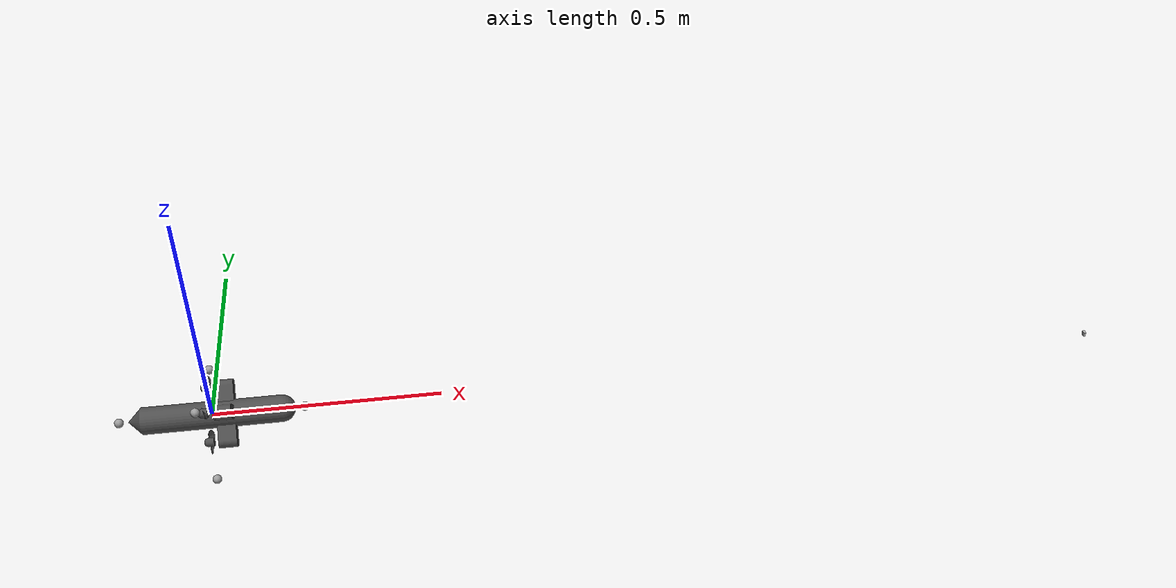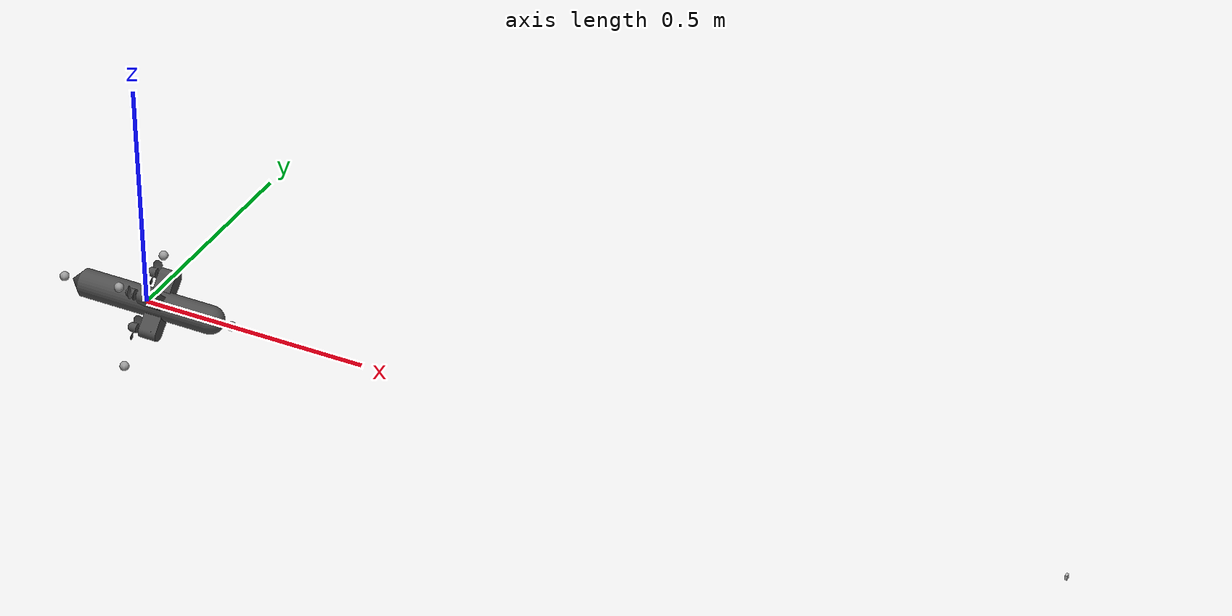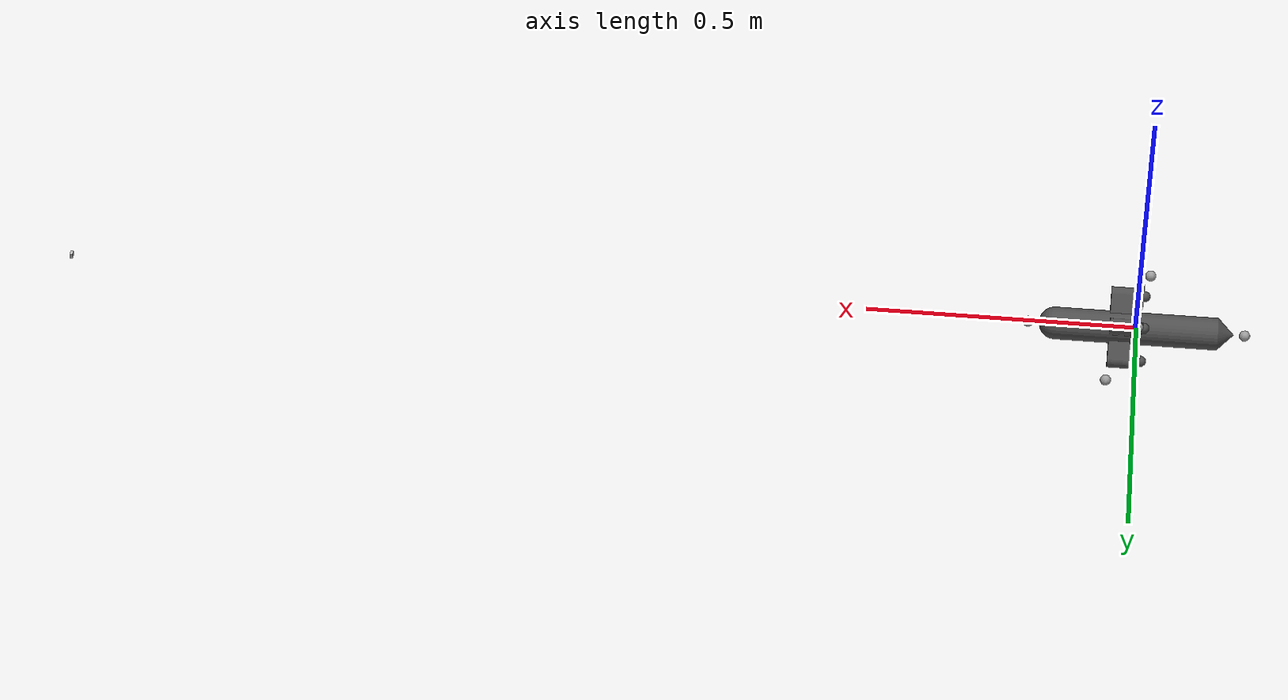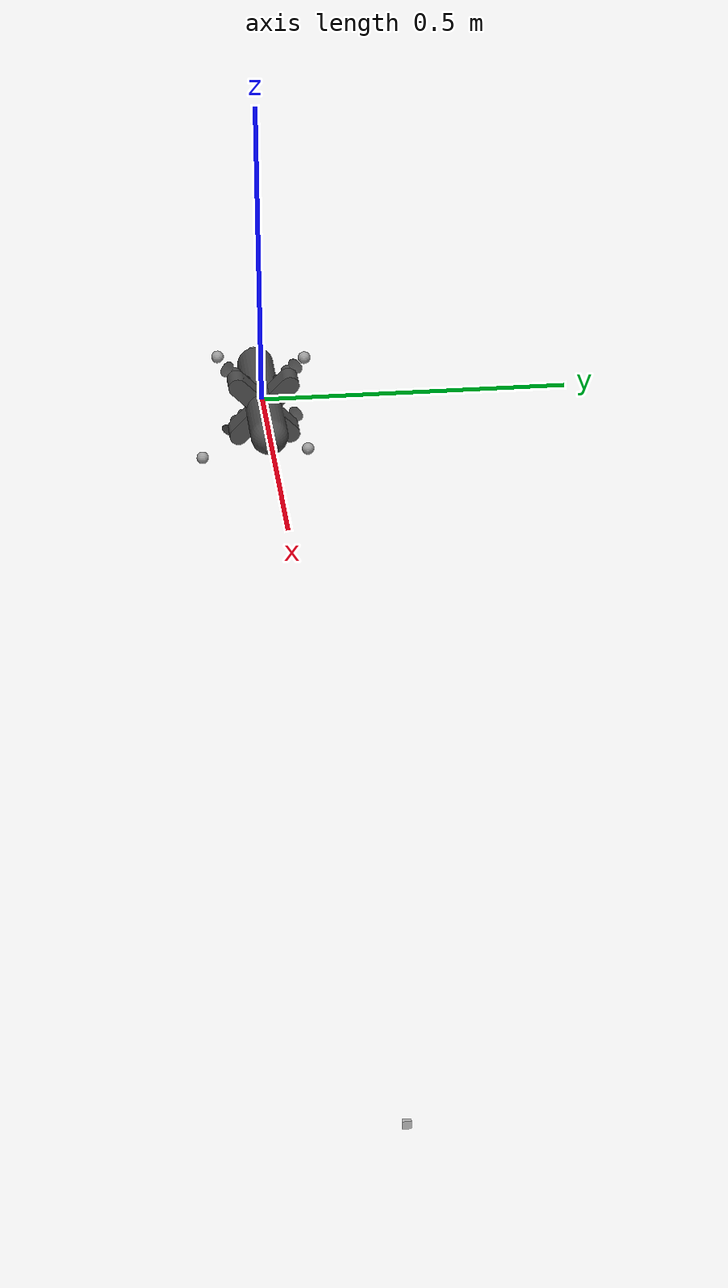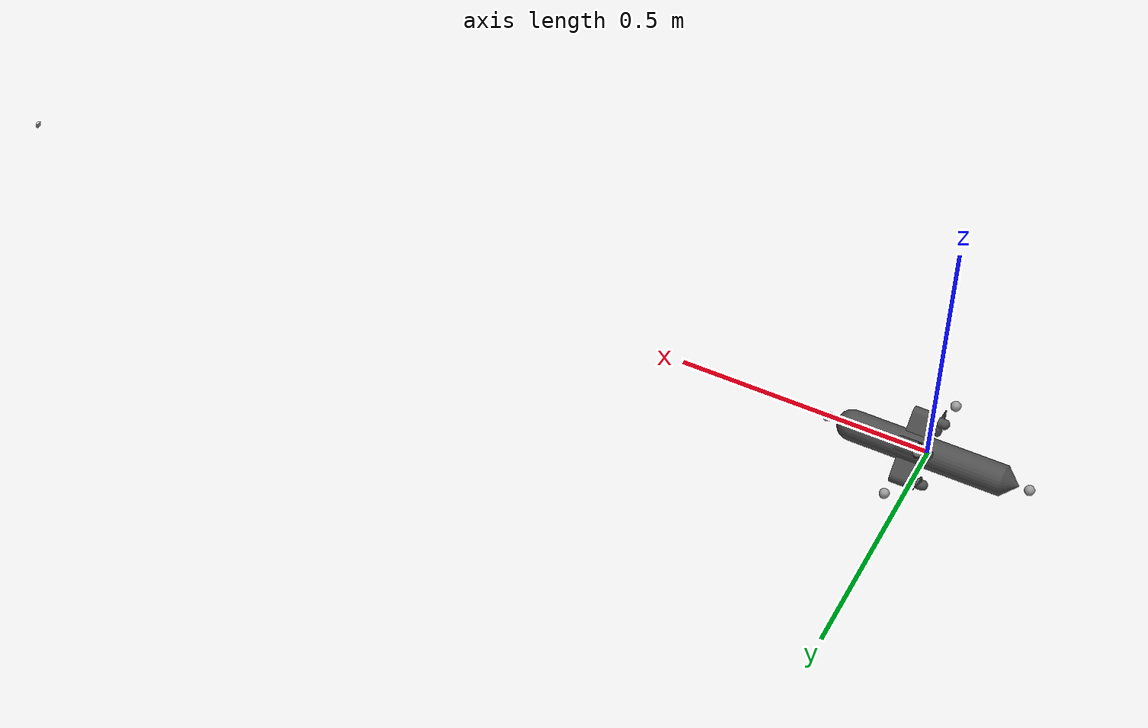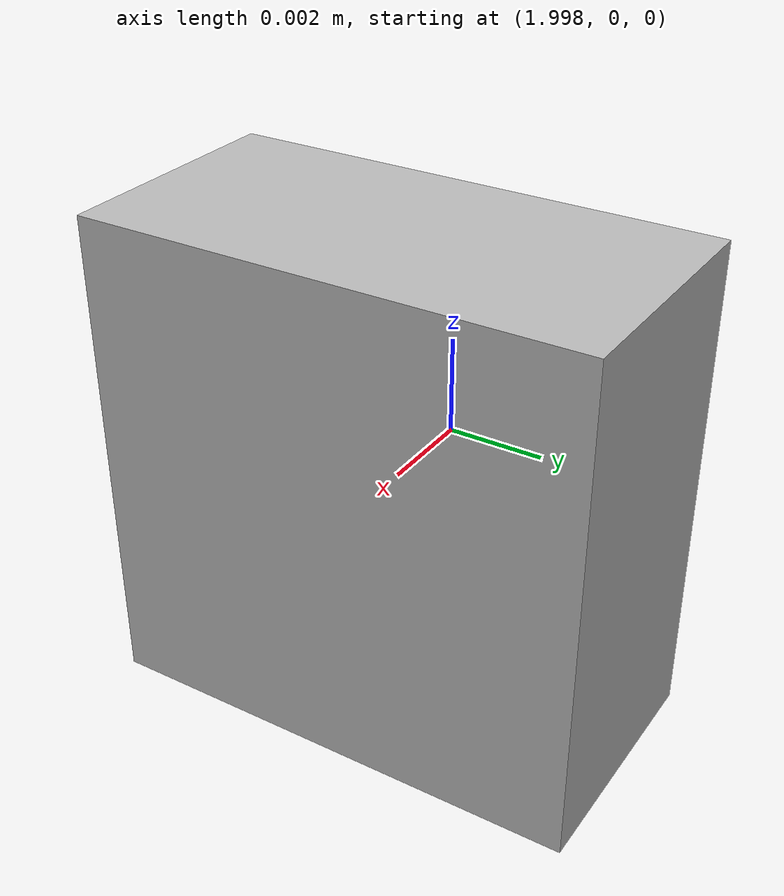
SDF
<?xml version="1.0" ?>
<sdf version="1.5">
  <world name="default">
    <!-- A global light source -->

    <include>
      <uri>model://collision_tank</uri>
    </include>

    <include>
      <uri>model://hippocampus</uri>
      <pose>0 0 0 0 0 0</pose>
    </include>

    <include>
      <uri>model://ros_camera</uri>
      <pose>2 0 0 0 3.14 0</pose>
    </include>

    <physics name='default_physics' default='0' type='ode'>
      <gravity>0 0 -9.8066</gravity>
      <ode>
        <solver>
          <type>quick</type>
          <iters>10</iters>
          <sor>1.3</sor>
          <use_dynamic_moi_rescaling>0</use_dynamic_moi_rescaling>
        </solver>
        <constraints>
          <cfm>0</cfm>
          <erp>0.2</erp>
          <contact_max_correcting_vel>100</contact_max_correcting_vel>
          <contact_surface_layer>0.001</contact_surface_layer>
        </constraints>
      </ode>
      <max_step_size>0.002</max_step_size>
      <real_time_factor>1</real_time_factor>
      <real_time_update_rate>500</real_time_update_rate>
      <magnetic_field>6e-06 2.3e-05 -4.2e-05</magnetic_field>
    </physics>
  </world>
</sdf>

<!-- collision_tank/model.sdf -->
<sdf version='1.5'>
  <model name='collision_tank'>
    <link name='link_0'>
      <pose frame=''>0 0 0 0 -0 0</pose>
      <inertial>
        <mass>1</mass>
        <pose frame=''>0 0 0 0 -0 0</pose>
        <inertia>
          <ixx>1</ixx>
          <ixy>0</ixy>
          <ixz>0</ixz>
          <iyy>1</iyy>
          <iyz>0</iyz>
          <izz>1</izz>
        </inertia>
      </inertial>
      <self_collide>0</self_collide>
      <kinematic>0</kinematic>
      <gravity>1</gravity>
      <visual name='visual'>
        <pose frame=''>0 0 -5.005 0 -0 0</pose>
        <geometry>
          <box>
            <size>10.02 10.02 0.01</size>
          </box>
        </geometry>
        <material>
          <lighting>1</lighting>
          <script>
            <uri>file://media/materials/scripts/gazebo.material</uri>
            <name>Gazebo/Grey</name>
          </script>
          <ambient>0.3 0.3 0.3 1</ambient>
          <diffuse>0.7 0.7 0.7 1</diffuse>
          <specular>0.01 0.01 0.01 1</specular>
          <emissive>0 0 0 1</emissive>
          <shader type='vertex'>
            <normal_map>__default__</normal_map>
          </shader>
        </material>
        <cast_shadows>1</cast_shadows>
        <transparency>0</transparency>
      </visual>
      <collision name='collision_2'>
        <laser_retro>0</laser_retro>
        <max_contacts>10</max_contacts>
        <pose frame=''>0 5.005 0 1.5708 -0 0</pose>
        <geometry>
          <box>
            <size>10.02 10.02 0.01</size>
          </box>
        </geometry>
        <surface>
          <friction>
            <ode>
              <mu>1</mu>
              <mu2>1</mu2>
              <fdir1>0 0 0</fdir1>
              <slip1>0</slip1>
              <slip2>0</slip2>
            </ode>
          </friction>
          <bounce>
            <restitution_coefficient>0</restitution_coefficient>
            <threshold>1e+06</threshold>
          </bounce>
          <contact>
            <collide_without_contact>0</collide_without_contact>
            <collide_without_contact_bitmask>1</collide_without_contact_bitmask>
            <collide_bitmask>1</collide_bitmask>
            <ode>
              <soft_cfm>0</soft_cfm>
              <soft_erp>0.2</soft_erp>
              <kp>1e+13</kp>
              <kd>1</kd>
              <max_vel>0.01</max_vel>
              <min_depth>0</min_depth>
            </ode>
            <bullet>
              <split_impulse>1</split_impulse>
              <split_impulse_penetration_threshold>-0.01</split_impulse_penetration_threshold>
              <soft_cfm>0</soft_cfm>
              <soft_erp>0.2</soft_erp>
              <kp>1e+13</kp>
              <kd>1</kd>
            </bullet>
          </contact>
        </surface>
      </collision>
      <collision name='collision_1'>
        <laser_retro>0</laser_retro>
        <max_contacts>10</max_contacts>
        <pose frame=''>-5.005 0 0 3.14159 1.57079 3.14159</pose>
        <geometry>
          <box>
            <size>10.02 10.02 0.01</size>
          </box>
        </geometry>
        <surface>
          <friction>
            <ode>
              <mu>1</mu>
              <mu2>1</mu2>
              <fdir1>0 0 0</fdir1>
              <slip1>0</slip1>
              <slip2>0</slip2>
            </ode>
          </friction>
          <bounce>
            <restitution_coefficient>0</restitution_coefficient>
            <threshold>1e+06</threshold>
          </bounce>
          <contact>
            <collide_without_contact>0</collide_without_contact>
            <collide_without_contact_bitmask>1</collide_without_contact_bitmask>
            <collide_bitmask>1</collide_bitmask>
            <ode>
              <soft_cfm>0</soft_cfm>
              <soft_erp>0.2</soft_erp>
              <kp>1e+13</kp>
              <kd>1</kd>
              <max_vel>0.01</max_vel>
              <min_depth>0</min_depth>
            </ode>
            <bullet>
              <split_impulse>1</split_impulse>
              <split_impulse_penetration_threshold>-0.01</split_impulse_penetration_threshold>
              <soft_cfm>0</soft_cfm>
              <soft_erp>0.2</soft_erp>
              <kp>1e+13</kp>
              <kd>1</kd>
            </bullet>
          </contact>
        </surface>
      </collision>
      <collision name='collision_3'>
        <laser_retro>0</laser_retro>
        <max_contacts>10</max_contacts>
        <pose frame=''>0 -5.005 0 1.5708 -0 0</pose>
        <geometry>
          <box>
            <size>10.02 10.02 0.01</size>
          </box>
        </geometry>
        <surface>
          <friction>
            <ode>
              <mu>1</mu>
              <mu2>1</mu2>
              <fdir1>0 0 0</fdir1>
              <slip1>0</slip1>
              <slip2>0</slip2>
            </ode>
          </friction>
          <bounce>
            <restitution_coefficient>0</restitution_coefficient>
            <threshold>1e+06</threshold>
          </bounce>
          <contact>
            <collide_without_contact>0</collide_without_contact>
            <collide_without_contact_bitmask>1</collide_without_contact_bitmask>
            <collide_bitmask>1</collide_bitmask>
            <ode>
              <soft_cfm>0</soft_cfm>
              <soft_erp>0.2</soft_erp>
              <kp>1e+13</kp>
              <kd>1</kd>
              <max_vel>0.01</max_vel>
              <min_depth>0</min_depth>
            </ode>
            <bullet>
              <split_impulse>1</split_impulse>
              <split_impulse_penetration_threshold>-0.01</split_impulse_penetration_threshold>
              <soft_cfm>0</soft_cfm>
              <soft_erp>0.2</soft_erp>
              <kp>1e+13</kp>
              <kd>1</kd>
            </bullet>
          </contact>
        </surface>
      </collision>
      <collision name='collision'>
        <laser_retro>0</laser_retro>
        <max_contacts>10</max_contacts>
        <pose frame=''>0 0 -5.005 0 -0 0</pose>
        <geometry>
          <box>
            <size>10.02 10.02 0.01</size>
          </box>
        </geometry>
        <surface>
          <friction>
            <ode>
              <mu>1</mu>
              <mu2>1</mu2>
              <fdir1>0 0 0</fdir1>
              <slip1>0</slip1>
              <slip2>0</slip2>
            </ode>
          </friction>
          <bounce>
            <restitution_coefficient>0</restitution_coefficient>
            <threshold>1e+06</threshold>
          </bounce>
          <contact>
            <collide_without_contact>0</collide_without_contact>
            <collide_without_contact_bitmask>1</collide_without_contact_bitmask>
            <collide_bitmask>1</collide_bitmask>
            <ode>
              <soft_cfm>0</soft_cfm>
              <soft_erp>0.2</soft_erp>
              <kp>1e+13</kp>
              <kd>1</kd>
              <max_vel>0.01</max_vel>
              <min_depth>0</min_depth>
            </ode>
            <bullet>
              <split_impulse>1</split_impulse>
              <split_impulse_penetration_threshold>-0.01</split_impulse_penetration_threshold>
              <soft_cfm>0</soft_cfm>
              <soft_erp>0.2</soft_erp>
              <kp>1e+13</kp>
              <kd>1</kd>
            </bullet>
          </contact>
        </surface>
      </collision>
      <collision name='collision_4'>
        <laser_retro>0</laser_retro>
        <max_contacts>10</max_contacts>
        <pose frame=''>5.005 0 0 3.14159 1.57079 3.14159</pose>
        <geometry>
          <box>
            <size>10.02 10.02 0.01</size>
          </box>
        </geometry>
        <surface>
          <friction>
            <ode>
              <mu>1</mu>
              <mu2>1</mu2>
              <fdir1>0 0 0</fdir1>
              <slip1>0</slip1>
              <slip2>0</slip2>
            </ode>
          </friction>
          <bounce>
            <restitution_coefficient>0</restitution_coefficient>
            <threshold>1e+06</threshold>
          </bounce>
          <contact>
            <collide_without_contact>0</collide_without_contact>
            <collide_without_contact_bitmask>1</collide_without_contact_bitmask>
            <collide_bitmask>1</collide_bitmask>
            <ode>
              <soft_cfm>0</soft_cfm>
              <soft_erp>0.2</soft_erp>
              <kp>1e+13</kp>
              <kd>1</kd>
              <max_vel>0.01</max_vel>
              <min_depth>0</min_depth>
            </ode>
            <bullet>
              <split_impulse>1</split_impulse>
              <split_impulse_penetration_threshold>-0.01</split_impulse_penetration_threshold>
              <soft_cfm>0</soft_cfm>
              <soft_erp>0.2</soft_erp>
              <kp>1e+13</kp>
              <kd>1</kd>
            </bullet>
          </contact>
        </surface>
      </collision>
      <collision name='collision_5'>
        <laser_retro>0</laser_retro>
        <max_contacts>10</max_contacts>
        <pose frame=''>0 0 5.005 0 -0 0</pose>
        <geometry>
          <box>
            <size>10.02 10.02 0.01</size>
          </box>
        </geometry>
        <surface>
          <friction>
            <ode>
              <mu>1</mu>
              <mu2>1</mu2>
              <fdir1>0 0 0</fdir1>
              <slip1>0</slip1>
              <slip2>0</slip2>
            </ode>
          </friction>
          <bounce>
            <restitution_coefficient>0</restitution_coefficient>
            <threshold>1e+06</threshold>
          </bounce>
          <contact>
            <collide_without_contact>0</collide_without_contact>
            <collide_without_contact_bitmask>1</collide_without_contact_bitmask>
            <collide_bitmask>1</collide_bitmask>
            <ode>
              <soft_cfm>0</soft_cfm>
              <soft_erp>0.2</soft_erp>
              <kp>1e+13</kp>
              <kd>1</kd>
              <max_vel>0.01</max_vel>
              <min_depth>0</min_depth>
            </ode>
            <bullet>
              <split_impulse>1</split_impulse>
              <split_impulse_penetration_threshold>-0.01</split_impulse_penetration_threshold>
              <soft_cfm>0</soft_cfm>
              <soft_erp>0.2</soft_erp>
              <kp>1e+13</kp>
              <kd>1</kd>
            </bullet>
          </contact>
        </surface>
      </collision>
    </link>
    <static>1</static>
    <allow_auto_disable>1</allow_auto_disable>
  </model>
</sdf>

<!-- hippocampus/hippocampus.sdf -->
<sdf version='1.5'>
  <model name='hippocampus_light'>
    <link name='base_link'>
      <pose frame=''>0 0 0 0 -0 0</pose>
      <inertial>
        <pose frame=''>0 0 0 0 -0 0</pose>
        <!--
          These values are a compromise between the dry mass and added mass
          values used to correct for hydrodynamic effects.
        -->
        <mass>2</mass>
        <inertia>
          <ixx>0.2</ixx>
          <ixy>0</ixy>
          <ixz>0</ixz>
          <iyy>0.4</iyy>
          <iyz>0</iyz>
          <izz>0.4</izz>
        </inertia>
      </inertial>
      <self_collide>0</self_collide>
      <kinematic>0</kinematic>
      <velocity_decay/>
      <gravity>0</gravity>
      <visual name='visual'>
        <pose frame=''>0 0 0 0 0 0</pose>
        <geometry>
          <mesh>
            <!-- chose lightweight or full resolution model by uncommenting -->
            <uri>model://hippocampus/meshes/hippocampus_light.stl</uri>
          </mesh>
        </geometry>
        <material>
          <lighting>1</lighting>
          <script>
            <uri>__default__</uri>
            <name>Gazebo/DarkGrey</name>
          </script>
          <ambient>0.3 0.3 0.3 1</ambient>
          <diffuse>0.7 0.7 0.7 1</diffuse>
          <specular>0.01 0.01 0.01 1</specular>
          <emissive>0 0 0 1</emissive>
          <shader type='vertex'>
            <normal_map>__default__</normal_map>
          </shader>
        </material>
        <cast_shadows>1</cast_shadows>
        <transparency>0</transparency>
      </visual>

      <!-- Colored markers used for visual localization -->
      <visual name='marker0'>
        <pose frame=''>0.2 0 0 0 -0 0</pose>
        <geometry>
          <sphere>
            <radius>0.01</radius>
          </sphere>
        </geometry>
        <material>
          <lighting>1</lighting>
          <script>
            <uri>file://media/materials/scripts/gazebo.material</uri>
            <name>Gazebo/Grey</name>
          </script>
          <ambient>0.0 0.0 0.0 1</ambient>
          <diffuse>0.0 0.0 0.0 1</diffuse>
          <specular>0.0 0.0 0.0 1</specular>
          <emissive>1.0 0.0 0.0 1</emissive>
        </material>
        <cast_shadows>0</cast_shadows>
        <transparency>0</transparency>
      </visual>
      <visual name='marker1'>
        <pose frame=''>0 0.07 0.07 0 -0 0</pose>
        <geometry>
          <sphere>
            <radius>0.01</radius>
          </sphere>
        </geometry>
        <material>
          <lighting>1</lighting>
          <script>
            <uri>file://media/materials/scripts/gazebo.material</uri>
            <name>Gazebo/Grey</name>
          </script>
          <ambient>0.0 0.0 0.0 1</ambient>
          <diffuse>0.0 0.0 0.0 1</diffuse>
          <specular>0.0 0.0 0.0 1</specular>
          <emissive>0.0 1.0 0.0 1</emissive>
        </material>
        <cast_shadows>0</cast_shadows>
        <transparency>0</transparency>
      </visual>
      <visual name='marker2'>
        <pose frame=''>0.05 0.07 -0.07 0 -0 0</pose>
        <geometry>
          <sphere>
            <radius>0.01</radius>
          </sphere>
        </geometry>
        <material>
          <lighting>1</lighting>
          <script>
            <uri>file://media/materials/scripts/gazebo.material</uri>
            <name>Gazebo/Grey</name>
          </script>
          <ambient>0.0 0.0 0.0 1</ambient>
          <diffuse>0.0 0.0 0.0 1</diffuse>
          <specular>0.0 0.0 0.0 1</specular>
          <emissive>0.0 0.0 1.0 1</emissive>
        </material>
        <cast_shadows>0</cast_shadows>
        <transparency>0</transparency>
      </visual>
      <visual name='marker3'>
        <pose frame=''>0 -0.1 -0.1 0 -0 0</pose>
        <geometry>
          <sphere>
            <radius>0.01</radius>
          </sphere>
        </geometry>
        <material>
          <lighting>1</lighting>
          <script>
            <uri>file://media/materials/scripts/gazebo.material</uri>
            <name>Gazebo/Grey</name>
          </script>
          <ambient>0.0 0.0 0.0 1</ambient>
          <diffuse>0.0 0.0 0.0 1</diffuse>
          <specular>0.0 0.0 0.0 1</specular>
          <emissive>1.0 1.0 0.0 1</emissive>
        </material>
        <cast_shadows>0</cast_shadows>
        <transparency>0</transparency>
      </visual>
      <visual name='marker4'>
        <pose frame=''>-0.02 -0.07 0.07 0 -0 0</pose>
        <geometry>
          <sphere>
            <radius>0.01</radius>
          </sphere>
        </geometry>
        <material>
          <lighting>1</lighting>
          <script>
            <uri>file://media/materials/scripts/gazebo.material</uri>
            <name>Gazebo/Grey</name>
          </script>
          <ambient>0.0 0.0 0.0 1</ambient>
          <diffuse>0.0 0.0 0.0 1</diffuse>
          <specular>0.0 0.0 0.0 1</specular>
          <emissive>0 1.0 1.0 1</emissive>
        </material>
        <cast_shadows>0</cast_shadows>
        <transparency>0</transparency>
      </visual>
      <visual name='marker5'>
        <pose frame=''>-0.20 0 0 0 -0 0</pose>
        <geometry>
          <sphere>
            <radius>0.01</radius>
          </sphere>
        </geometry>
        <material>
          <lighting>1</lighting>
          <script>
            <uri>file://media/materials/scripts/gazebo.material</uri>
            <name>Gazebo/Grey</name>
          </script>
          <ambient>0.0 0.0 0.0 1</ambient>
          <diffuse>0.0 0.0 0.0 1</diffuse>
          <specular>0.0 0.0 0.0 1</specular>
          <emissive>1.0 0.0 1.0 1</emissive>
        </material>
        <cast_shadows>0</cast_shadows>
        <transparency>0</transparency>
      </visual>

      <gravity>0</gravity>
      <collision name='base_link_collision'>
        <laser_retro>0</laser_retro>
        <max_contacts>10</max_contacts>
        <pose frame=''>0 0 0 0 1.570796 0</pose>
        <geometry>
          <cylinder>
            <radius>0.03</radius>
            <length>0.36</length>
          </cylinder>
        </geometry>
        <surface>
          <friction>
            <ode>
              <mu>1</mu>
              <mu2>1</mu2>
              <fdir1>0 0 0</fdir1>
              <slip1>0</slip1>
              <slip2>0</slip2>
            </ode>
          </friction>
          <bounce>
            <restitution_coefficient>0</restitution_coefficient>
            <threshold>1e+06</threshold>
          </bounce>
          <contact>
            <collide_without_contact>0</collide_without_contact>
            <collide_without_contact_bitmask>1</collide_without_contact_bitmask>
            <collide_bitmask>1</collide_bitmask>
            <ode>
              <soft_cfm>0</soft_cfm>
              <soft_erp>0.2</soft_erp>
              <kp>1e+13</kp>
              <kd>1</kd>
              <max_vel>0.01</max_vel>
              <min_depth>0</min_depth>
            </ode>
            <bullet>
              <split_impulse>1</split_impulse>
              <split_impulse_penetration_threshold>-0.01</split_impulse_penetration_threshold>
              <soft_cfm>0</soft_cfm>
              <soft_erp>0.2</soft_erp>
              <kp>1e+13</kp>
              <kd>1</kd>
            </bullet>
          </contact>
        </surface>
      </collision>
    </link>
    <link name='hippocampus/imu_link'>
      <pose frame=''>0 0 0 0 -0 0</pose>
      <inertial>
        <pose frame=''>0 0 0 0 -0 0</pose>
        <mass>0.015</mass>
        <inertia>
          <ixx>1e-05</ixx>
          <ixy>0</ixy>
          <ixz>0</ixz>
          <iyy>1e-05</iyy>
          <iyz>0</iyz>
          <izz>1e-05</izz>
        </inertia>
      </inertial>
      <self_collide>0</self_collide>
      <kinematic>0</kinematic>
      <gravity>0</gravity>
    </link>
    <link name='rotor_0'>
      <pose frame=''>0 0.042426 0.042426 0 1.570796 0</pose>
      <self_collide>0</self_collide>
      <kinematic>0</kinematic>
      <velocity_decay/>
      <gravity>0</gravity>
      <visual name='rotor_0_visual'>
        <pose frame=''>0 0 0 0 -0 0</pose>
        <geometry>
          <mesh>
            <scale>1 1 1</scale>
            <uri>model://hippocampus/meshes/hippocampus_prop_cw.stl</uri>
          </mesh>
        </geometry>
        <material>
          <script>
            <name>Gazebo/DarkGrey</name>
            <uri>__default__</uri>
          </script>
          <ambient>0.3 0.3 0.3 1</ambient>
          <diffuse>0.3 0.3 0.3 1</diffuse>
          <specular>0.3 0.3 0.3 1</specular>
          <emissive>0 0 0 1</emissive>
          <shader type='vertex'>
            <normal_map>__default__</normal_map>
          </shader>
        </material>
        <cast_shadows>1</cast_shadows>
        <transparency>0</transparency>
      </visual>
      <collision name='rotor_0_collision'>
        <laser_retro>0</laser_retro>
        <max_contacts>10</max_contacts>
        <pose frame=''>0 0 0.02 0 -0 0</pose>
        <geometry>
          <cylinder>
            <radius>0.02</radius>
            <length>0.06</length>
          </cylinder>
        </geometry>
        <surface>
          <friction>
            <ode>
              <mu>1</mu>
              <mu2>1</mu2>
              <fdir1>0 0 0</fdir1>
              <slip1>0</slip1>
              <slip2>0</slip2>
            </ode>
          </friction>
          <bounce>
            <restitution_coefficient>0</restitution_coefficient>
            <threshold>1e+06</threshold>
          </bounce>
          <contact>
            <collide_without_contact>0</collide_without_contact>
            <collide_without_contact_bitmask>1</collide_without_contact_bitmask>
            <collide_bitmask>1</collide_bitmask>
            <ode>
              <soft_cfm>0</soft_cfm>
              <soft_erp>0.2</soft_erp>
              <kp>1e+13</kp>
              <kd>1</kd>
              <max_vel>0.01</max_vel>
              <min_depth>0</min_depth>
            </ode>
            <bullet>
              <split_impulse>1</split_impulse>
              <split_impulse_penetration_threshold>-0.01</split_impulse_penetration_threshold>
              <soft_cfm>0</soft_cfm>
              <soft_erp>0.2</soft_erp>
              <kp>1e+13</kp>
              <kd>1</kd>
            </bullet>
          </contact>
        </surface>
      </collision>
    </link>
    <link name='rotor_1'>
      <pose frame=''>0 -0.042426 0.042426 0 1.570796 0</pose>
      <self_collide>0</self_collide>
      <kinematic>0</kinematic>
      <velocity_decay/>
      <gravity>0</gravity>
      <visual name='rotor_1_visual'>
        <pose frame=''>0 0 0 0 -0 0</pose>
        <geometry>
          <mesh>
            <scale>1 1 1</scale>
            <uri>model://hippocampus/meshes/hippocampus_prop_ccw.stl</uri>
          </mesh>
        </geometry>
        <material>
          <script>
            <name>Gazebo/DarkGrey</name>
            <uri>__default__</uri>
          </script>
          <ambient>0.175 0.175 0.175 1</ambient>
          <diffuse>0.175 0.175 0.175 1</diffuse>
          <specular>0.175 0.175 0.175 1</specular>
          <emissive>0 0 0 1</emissive>
          <shader type='vertex'>
            <normal_map>__default__</normal_map>
          </shader>
        </material>
        <cast_shadows>1</cast_shadows>
        <transparency>0</transparency>
      </visual>
      <collision name='rotor_1_collision'>
        <laser_retro>0</laser_retro>
        <max_contacts>10</max_contacts>
        <pose frame=''>0 0 0.02 0 -0 0</pose>
        <geometry>
          <cylinder>
            <radius>0.02</radius>
            <length>0.06</length>
          </cylinder>
        </geometry>
        <surface>
          <friction>
            <ode>
              <mu>1</mu>
              <mu2>1</mu2>
              <fdir1>0 0 0</fdir1>
              <slip1>0</slip1>
              <slip2>0</slip2>
            </ode>
          </friction>
          <bounce>
            <restitution_coefficient>0</restitution_coefficient>
            <threshold>1e+06</threshold>
          </bounce>
          <contact>
            <collide_without_contact>0</collide_without_contact>
            <collide_without_contact_bitmask>1</collide_without_contact_bitmask>
            <collide_bitmask>1</collide_bitmask>
            <ode>
              <soft_cfm>0</soft_cfm>
              <soft_erp>0.2</soft_erp>
              <kp>1e+13</kp>
              <kd>1</kd>
              <max_vel>0.01</max_vel>
              <min_depth>0</min_depth>
            </ode>
            <bullet>
              <split_impulse>1</split_impulse>
              <split_impulse_penetration_threshold>-0.01</split_impulse_penetration_threshold>
              <soft_cfm>0</soft_cfm>
              <soft_erp>0.2</soft_erp>
              <kp>1e+13</kp>
              <kd>1</kd>
            </bullet>
          </contact>
        </surface>
      </collision>
    </link>
    <link name='rotor_2'>
      <pose frame=''>0 -0.042426 -0.042426 0 1.570796 0</pose>
      <self_collide>0</self_collide>
      <kinematic>0</kinematic>
      <velocity_decay/>
      <gravity>0</gravity>
      <visual name='rotor_2_visual'>
        <pose frame=''>0 0 0 0 -0 0</pose>
        <geometry>
          <mesh>
            <scale>1 1 1</scale>
            <uri>model://hippocampus/meshes/hippocampus_prop_cw.stl</uri>
          </mesh>
        </geometry>
        <material>
          <script>
            <name>Gazebo/DarkGrey</name>
            <uri>__default__</uri>
          </script>
          <ambient>0.175 0.175 0.175 1</ambient>
          <diffuse>0.175 0.175 0.175 1</diffuse>
          <specular>0.175 0.175 0.175 1</specular>
          <emissive>0 0 0 1</emissive>
          <shader type='vertex'>
            <normal_map>__default__</normal_map>
          </shader>
        </material>
        <cast_shadows>1</cast_shadows>
        <transparency>0</transparency>
      </visual>
      <collision name='rotor_2_collision'>
        <laser_retro>0</laser_retro>
        <max_contacts>10</max_contacts>
        <pose frame=''>0 0 0.02 0 -0 0</pose>
        <geometry>
          <cylinder>
            <radius>0.02</radius>
            <length>0.06</length>
          </cylinder>
        </geometry>
        <surface>
          <friction>
            <ode>
              <mu>1</mu>
              <mu2>1</mu2>
              <fdir1>0 0 0</fdir1>
              <slip1>0</slip1>
              <slip2>0</slip2>
            </ode>
          </friction>
          <bounce>
            <restitution_coefficient>0</restitution_coefficient>
            <threshold>1e+06</threshold>
          </bounce>
          <contact>
            <collide_without_contact>0</collide_without_contact>
            <collide_without_contact_bitmask>1</collide_without_contact_bitmask>
            <collide_bitmask>1</collide_bitmask>
            <ode>
              <soft_cfm>0</soft_cfm>
              <soft_erp>0.2</soft_erp>
              <kp>1e+13</kp>
              <kd>1</kd>
              <max_vel>0.01</max_vel>
              <min_depth>0</min_depth>
            </ode>
            <bullet>
              <split_impulse>1</split_impulse>
              <split_impulse_penetration_threshold>-0.01</split_impulse_penetration_threshold>
              <soft_cfm>0</soft_cfm>
              <soft_erp>0.2</soft_erp>
              <kp>1e+13</kp>
              <kd>1</kd>
            </bullet>
          </contact>
        </surface>
      </collision>
    </link>
    <link name='rotor_3'>
      <pose frame=''>0 0.042426 -0.042426 0 1.570796 0</pose>
      <self_collide>0</self_collide>
      <kinematic>0</kinematic>
      <velocity_decay/>
      <gravity>0</gravity>
      <visual name='rotor_3_visual'>
        <pose frame=''>0 0 0 0 -0 0</pose>
        <geometry>
          <mesh>
            <scale>1 1 1</scale>
            <uri>model://hippocampus/meshes/hippocampus_prop_cw.stl</uri>
          </mesh>
        </geometry>
        <material>
          <script>
            <name>Gazebo/DarkGrey</name>
            <uri>__default__</uri>
          </script>
          <ambient>0.175 0.175 0.175 1</ambient>
          <diffuse>0.175 0.175 0.175 1</diffuse>
          <specular>0.175 0.175 0.175 1</specular>
          <emissive>0 0 0 1</emissive>
          <shader type='vertex'>
            <normal_map>__default__</normal_map>
          </shader>
        </material>
        <cast_shadows>1</cast_shadows>
        <transparency>0</transparency>
      </visual>
      <collision name='rotor_3_collision'>
        <laser_retro>0</laser_retro>
        <max_contacts>10</max_contacts>
        <pose frame=''>0 0 0.02 0 -0 0</pose>
        <geometry>
          <cylinder>
            <radius>0.02</radius>
            <length>0.06</length>
          </cylinder>
        </geometry>
        <surface>
          <friction>
            <ode>
              <mu>1</mu>
              <mu2>1</mu2>
              <fdir1>0 0 0</fdir1>
              <slip1>0</slip1>
              <slip2>0</slip2>
            </ode>
          </friction>
          <bounce>
            <restitution_coefficient>0</restitution_coefficient>
            <threshold>1e+06</threshold>
          </bounce>
          <contact>
            <collide_without_contact>0</collide_without_contact>
            <collide_without_contact_bitmask>1</collide_without_contact_bitmask>
            <collide_bitmask>1</collide_bitmask>
            <ode>
              <soft_cfm>0</soft_cfm>
              <soft_erp>0.2</soft_erp>
              <kp>1e+13</kp>
              <kd>1</kd>
              <max_vel>0.01</max_vel>
              <min_depth>0</min_depth>
            </ode>
            <bullet>
              <split_impulse>1</split_impulse>
              <split_impulse_penetration_threshold>-0.01</split_impulse_penetration_threshold>
              <soft_cfm>0</soft_cfm>
              <soft_erp>0.2</soft_erp>
              <kp>1e+13</kp>
              <kd>1</kd>
            </bullet>
          </contact>
        </surface>
      </collision>
    </link>

    <joint name='hippocampus/imu_joint' type='revolute'>
      <parent>base_link</parent>
      <child>hippocampus/imu_link</child>
      <axis>
        <xyz>1 0 0</xyz>
        <use_parent_model_frame>1</use_parent_model_frame>
        <limit>
          <lower>0</lower>
          <upper>0</upper>
          <effort>0</effort>
          <velocity>0</velocity>
        </limit>
        <dynamics>
          <spring_reference>0</spring_reference>
          <spring_stiffness>0</spring_stiffness>
          <damping>0</damping>
          <friction>0</friction>
        </dynamics>
      </axis>
      <physics>
        <ode>
          <limit>
            <cfm>0</cfm>
            <erp>0.2</erp>
          </limit>
          <suspension>
            <cfm>0</cfm>
            <erp>0.2</erp>
          </suspension>
        </ode>
      </physics>
    </joint>
    <joint name='rotor_0_joint' type='revolute'>
      <parent>base_link</parent>
      <child>rotor_0</child>
      <axis>
        <xyz>1 0 0</xyz>
        <use_parent_model_frame>1</use_parent_model_frame>
        <limit>
          <lower>-1e+16</lower>
          <upper>1e+16</upper>
          <effort>-1</effort>
          <velocity>-1</velocity>
        </limit>
        <dynamics>
          <spring_reference>0</spring_reference>
          <spring_stiffness>0</spring_stiffness>
          <damping>0</damping>
          <friction>0</friction>
        </dynamics>
      </axis>
      <physics>
        <ode>
          <limit>
            <cfm>0</cfm>
            <erp>0.2</erp>
          </limit>
          <suspension>
            <cfm>0</cfm>
            <erp>0.2</erp>
          </suspension>
        </ode>
      </physics>
    </joint>
    <joint name='rotor_1_joint' type='revolute'>
      <parent>base_link</parent>
      <child>rotor_1</child>
      <axis>
        <xyz>1 0 0</xyz>
        <use_parent_model_frame>1</use_parent_model_frame>
        <limit>
          <lower>-1e+16</lower>
          <upper>1e+16</upper>
          <effort>-1</effort>
          <velocity>-1</velocity>
        </limit>
        <dynamics>
          <spring_reference>0</spring_reference>
          <spring_stiffness>0</spring_stiffness>
          <damping>0</damping>
          <friction>0</friction>
        </dynamics>
      </axis>
      <physics>
        <ode>
          <limit>
            <cfm>0</cfm>
            <erp>0.2</erp>
          </limit>
          <suspension>
            <cfm>0</cfm>
            <erp>0.2</erp>
          </suspension>
        </ode>
      </physics>
    </joint>
    <joint name='rotor_2_joint' type='revolute'>
      <parent>base_link</parent>
      <child>rotor_2</child>
      <axis>
        <xyz>1 0 0</xyz>
        <use_parent_model_frame>1</use_parent_model_frame>
        <limit>
          <lower>-1e+16</lower>
          <upper>1e+16</upper>
          <effort>-1</effort>
          <velocity>-1</velocity>
        </limit>
        <dynamics>
          <spring_reference>0</spring_reference>
          <spring_stiffness>0</spring_stiffness>
          <damping>0</damping>
          <friction>0</friction>
        </dynamics>
      </axis>
      <physics>
        <ode>
          <limit>
            <cfm>0</cfm>
            <erp>0.2</erp>
          </limit>
          <suspension>
            <cfm>0</cfm>
            <erp>0.2</erp>
          </suspension>
        </ode>
      </physics>
    </joint>
    <joint name='rotor_3_joint' type='revolute'>
      <parent>base_link</parent>
      <child>rotor_3</child>
      <axis>
        <xyz>1 0 0</xyz>
        <use_parent_model_frame>1</use_parent_model_frame>
        <limit>
          <lower>-1e+16</lower>
          <upper>1e+16</upper>
          <effort>-1</effort>
          <velocity>-1</velocity>
        </limit>
        <dynamics>
          <spring_reference>0</spring_reference>
          <spring_stiffness>0</spring_stiffness>
          <damping>0</damping>
          <friction>0</friction>
        </dynamics>
      </axis>
      <physics>
        <ode>
          <limit>
            <cfm>0</cfm>
            <erp>0.2</erp>
          </limit>
          <suspension>
            <cfm>0</cfm>
            <erp>0.2</erp>
          </suspension>
        </ode>
      </physics>
    </joint>
    <static>0</static>
    <allow_auto_disable>1</allow_auto_disable>
    <plugin name='mavlink_interface' filename='librotors_gazebo_mavlink_interface.so'>
      <robotNamespace>hippocampus</robotNamespace>
      <imuSubTopic>/imu</imuSubTopic>
      <motorSpeedCommandPubTopic>/gazebo/command/motor_speed</motorSpeedCommandPubTopic>
      <commandScaling>2.0</commandScaling>
      <commandOffset>-1.0</commandOffset>
    </plugin>
    <plugin name='uuv_plugin' filename='librotors_gazebo_uuv_plugin.so'>
      <robotNamespace>iris</robotNamespace>
      <commandSubTopic>/gazebo/command/motor_speed</commandSubTopic>
      <linkName>base_link</linkName>
      <motorForceConstant>10.0</motorForceConstant>
      <motorTorqueConstant>0.5</motorTorqueConstant>

      <!--Parameters from MATLAB simulation-->

      <!--Parameters for convenient dynamics-->
      <dampingLinear>100 10 10</dampingLinear>
      <dampingAngular>5 5 5</dampingAngular>
    </plugin>
    <plugin name='rotors_gazebo_imu_plugin' filename='librotors_gazebo_imu_plugin.so'>
      <robotNamespace>hippocampus</robotNamespace>
      <linkName>hippocampus/imu_link</linkName>
      <imuTopic>/imu</imuTopic>
      <gyroscopeNoiseDensity>0.0003394</gyroscopeNoiseDensity>
      <gyroscopeRandomWalk>3.8785e-05</gyroscopeRandomWalk>
      <gyroscopeBiasCorrelationTime>1000.0</gyroscopeBiasCorrelationTime>
      <gyroscopeTurnOnBiasSigma>0.0087</gyroscopeTurnOnBiasSigma>
      <accelerometerNoiseDensity>0.004</accelerometerNoiseDensity>
      <accelerometerRandomWalk>0.006</accelerometerRandomWalk>
      <accelerometerBiasCorrelationTime>300.0</accelerometerBiasCorrelationTime>
      <accelerometerTurnOnBiasSigma>0.196</accelerometerTurnOnBiasSigma>
    </plugin>

    <!-- The motor model plugins can be removed if you don't need the rotors to spin-->
    <plugin name='front_right_motor_model' filename='librotors_gazebo_motor_model.so'>
      <robotNamespace>hippocampus</robotNamespace>
      <jointName>rotor_0_joint</jointName>
      <linkName>rotor_0</linkName>
      <turningDirection>cw</turningDirection>
      <timeConstantUp>0.0125</timeConstantUp>
      <timeConstantDown>0.025</timeConstantDown>
      <maxRotVelocity>838</maxRotVelocity>
      <motorConstant>8.54858e-06</motorConstant>
      <momentConstant>0.016</momentConstant>
      <commandSubTopic>/gazebo/command/motor_speed</commandSubTopic>
      <motorNumber>0</motorNumber>
      <rotorDragCoefficient>8.06428e-05</rotorDragCoefficient>
      <rollingMomentCoefficient>1e-06</rollingMomentCoefficient>
      <motorSpeedPubTopic>motor_speed/0</motorSpeedPubTopic>
      <rotorVelocitySlowdownSim>0.05</rotorVelocitySlowdownSim>
      <applyForce>false</applyForce>
    </plugin>
    <plugin name='back_left_motor_model' filename='librotors_gazebo_motor_model.so'>
      <robotNamespace>hippocampus</robotNamespace>
      <jointName>rotor_1_joint</jointName>
      <linkName>rotor_1</linkName>
      <turningDirection>ccw</turningDirection>
      <timeConstantUp>0.0125</timeConstantUp>
      <timeConstantDown>0.025</timeConstantDown>
      <maxRotVelocity>838</maxRotVelocity>
      <motorConstant>8.54858e-06</motorConstant>
      <momentConstant>0.016</momentConstant>
      <commandSubTopic>/gazebo/command/motor_speed</commandSubTopic>
      <motorNumber>1</motorNumber>
      <rotorDragCoefficient>8.06428e-05</rotorDragCoefficient>
      <rollingMomentCoefficient>1e-06</rollingMomentCoefficient>
      <motorSpeedPubTopic>motor_speed/1</motorSpeedPubTopic>
      <rotorVelocitySlowdownSim>0.05</rotorVelocitySlowdownSim>
      <applyForce>false</applyForce>
    </plugin>
    <plugin name='front_left_motor_model' filename='librotors_gazebo_motor_model.so'>
      <robotNamespace>hippocampus</robotNamespace>
      <jointName>rotor_2_joint</jointName>
      <linkName>rotor_2</linkName>
      <turningDirection>cw</turningDirection>
      <timeConstantUp>0.0125</timeConstantUp>
      <timeConstantDown>0.025</timeConstantDown>
      <maxRotVelocity>838</maxRotVelocity>
      <motorConstant>8.54858e-06</motorConstant>
      <momentConstant>0.016</momentConstant>
      <commandSubTopic>/gazebo/command/motor_speed</commandSubTopic>
      <motorNumber>2</motorNumber>
      <rotorDragCoefficient>8.06428e-05</rotorDragCoefficient>
      <rollingMomentCoefficient>1e-06</rollingMomentCoefficient>
      <motorSpeedPubTopic>motor_speed/2</motorSpeedPubTopic>
      <rotorVelocitySlowdownSim>0.05</rotorVelocitySlowdownSim>
      <applyForce>false</applyForce>
    </plugin>
    <plugin name='back_right_motor_model' filename='librotors_gazebo_motor_model.so'>
      <robotNamespace>hippocampus</robotNamespace>
      <jointName>rotor_3_joint</jointName>
      <linkName>rotor_3</linkName>
      <turningDirection>ccw</turningDirection>
      <timeConstantUp>0.0125</timeConstantUp>
      <timeConstantDown>0.025</timeConstantDown>
      <maxRotVelocity>838</maxRotVelocity>
      <motorConstant>8.54858e-06</motorConstant>
      <momentConstant>0.016</momentConstant>
      <commandSubTopic>/gazebo/command/motor_speed</commandSubTopic>
      <motorNumber>3</motorNumber>
      <rotorDragCoefficient>8.06428e-05</rotorDragCoefficient>
      <rollingMomentCoefficient>1e-06</rollingMomentCoefficient>
      <motorSpeedPubTopic>motor_speed/3</motorSpeedPubTopic>
      <rotorVelocitySlowdownSim>0.05</rotorVelocitySlowdownSim>
      <applyForce>false</applyForce>
    </plugin>
  </model>
</sdf>

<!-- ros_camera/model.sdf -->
<sdf version="1.4">
  <model name="camera">
    <link name="link">
      <inertial>
        <pose>0.0025 0.005 0.005 0 -0 0</pose>
        <mass>0.01</mass>
        <inertia>
          <ixx>4.15e-6</ixx>
          <ixy>0</ixy>
          <ixz>0</ixz>
          <iyy>2.407e-6</iyy>
          <iyz>0</iyz>
          <izz>2.407e-6</izz>
        </inertia>
      </inertial>
      <visual name="visual">
        <geometry>
          <box>
            <size>0.005 0.01 0.01</size>
          </box>
        </geometry>
      </visual>
      <sensor name="camera" type="camera">
        <camera>
          <horizontal_fov>1.57</horizontal_fov>
          <image>
            <width>640</width>
            <height>480</height>
          </image>
          <clip>
            <near>0.1</near>
            <far>100</far>
          </clip>
          <noise>
            <type>gaussian</type>
            <mean>0.0</mean>
            <stddev>0.001</stddev>
          </noise>
        </camera>
        <plugin name="camera_plugin" filename="libgazebo_ros_camera.so">
          <always_on>1</always_on>
          <update_rate>30</update_rate>
          <imageTopicName>image_raw</imageTopicName>
          <cameraInfoTopicName>camera_info</cameraInfoTopicName>
          <frameName>camera</frameName>
        </plugin>
        <always_on>1</always_on>
        <update_rate>30</update_rate>
        <visualize>true</visualize>
      </sensor>
      <gravity>0</gravity>
    </link>
  </model>
</sdf>
